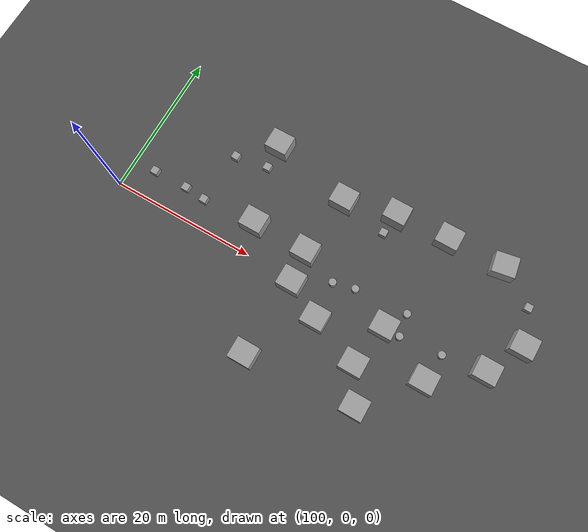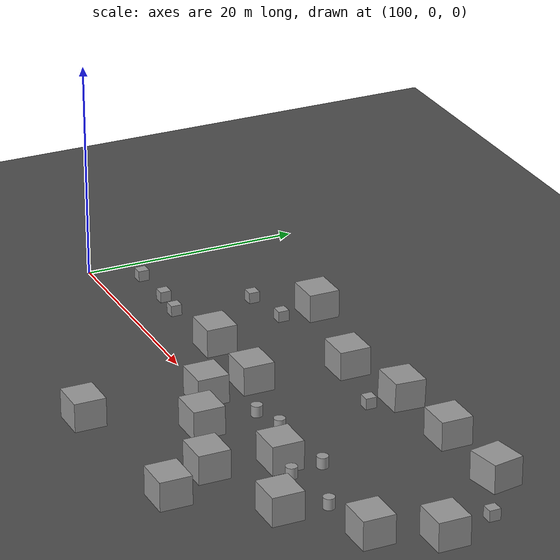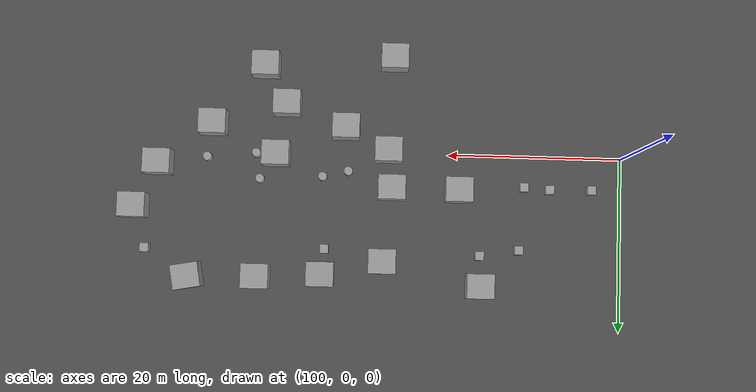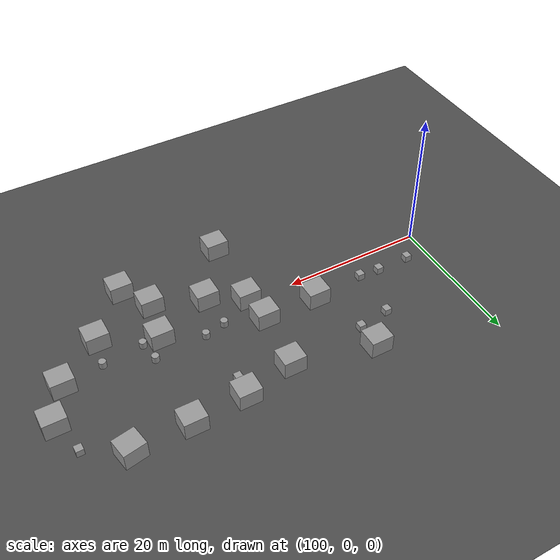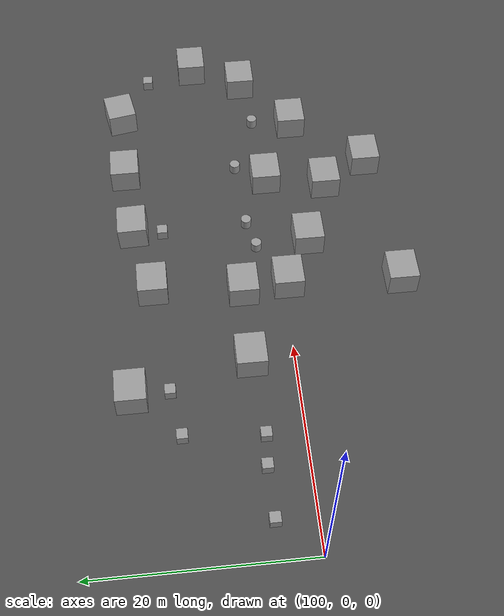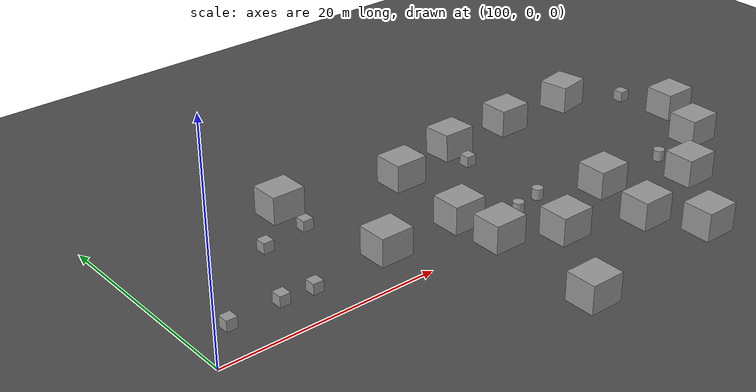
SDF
<sdf version="1.7">
 <world name="default">
  <scene>
   <sky><clouds><speed>6</speed></clouds></sky>
   <ambient>0.95 0.95 0.95 1</ambient>
   <background>0.3 0.3 0.3 1</background>
   <shadows>1</shadows>
  </scene>
  <spherical_coordinates>
   <surface_model>EARTH_WGS84</surface_model>
   <latitude_deg>31.1434</latitude_deg>
   <longitude_deg>121.424</longitude_deg>
   <elevation>2</elevation>
   <heading_deg>0</heading_deg>
  </spherical_coordinates>
  <light name="sun" type="directional">
   <pose>0 0 10 0 -0 0</pose>
   <diffuse>0.8 0.8 0.8 1</diffuse>
   <specular>0.2 0.2 0.2 1</specular>
   <attenuation>
    <range>1000</range>
    <constant>0.9</constant>
    <linear>0.01</linear>
    <quadratic>0.001</quadratic>
   </attenuation>
   <direction>-0.5 0.1 -0.9</direction>
   <spot><inner_angle>0</inner_angle><outer_angle>0</outer_angle><falloff>0</falloff></spot>
  </light>
  <model name="asphalt_plane">
   <static>1</static>
   <link name="link">
    <collision name="collision"><geometry><box><size>400 400 0.1</size></box></geometry></collision>
    <visual name="visual">
     <cast_shadows>0</cast_shadows>
     <geometry><box><size>400 400 0.1</size></box></geometry>
     <material>
      <script>
       <uri>model://asphalt_plane/materials/scripts</uri>
       <uri>model://asphalt_plane/materials/textures</uri>
       <name>vrc/asphalt</name>
      </script>
     </material>
    </visual>
   </link>
  </model>
  <physics name="default_physics" default="0" type="ode">
   <ode>
    <solver>
     <type>quick</type>
     <iters>10</iters>
     <sor>1.3</sor>
     <use_dynamic_moi_rescaling>0</use_dynamic_moi_rescaling>
    </solver>
    <constraints>
     <cfm>0</cfm>
     <erp>0.2</erp>
     <contact_max_correcting_vel>100</contact_max_correcting_vel>
     <contact_surface_layer>0.001</contact_surface_layer>
    </constraints>
   </ode>
   <max_step_size>0.004</max_step_size>
   <real_time_factor>1</real_time_factor>
   <real_time_update_rate>250</real_time_update_rate>
  </physics>
  <gravity>0 0 -9.8066</gravity>
  <magnetic_field>6e-06 2.3e-05 -4.2e-05</magnetic_field>
  <atmosphere type="adiabatic"/>
  <model name="unit_box">
   <pose>156.067 6.77384 1.44092 3.4e-05 -1e-06 -0.001028</pose>
   <link name="link">
    <inertial>
     <mass>1</mass>
     <inertia>
      <ixx>0.166667</ixx>
      <ixy>0</ixy>
      <ixz>0</ixz>
      <iyy>0.166667</iyy>
      <iyz>0</iyz>
      <izz>0.166667</izz>
     </inertia>
    </inertial>
    <collision name="collision"><geometry><box><size>3.13624 2.80509 2.58182</size></box></geometry></collision>
    <visual name="visual">
     <geometry><box><size>3.13624 2.80509 2.58182</size></box></geometry>
     <material>
      <script><name>Gazebo/Grey</name><uri>file://media/materials/scripts/gazebo.material</uri></script>
     </material>
    </visual>
   </link>
  </model>
  <model name="unit_box_0">
   <pose>154.701 11.5995 0.65 1.6e-05 4e-06 0.000752</pose>
   <link name="link">
    <inertial>
     <mass>1</mass>
     <inertia>
      <ixx>0.166667</ixx>
      <ixy>0</ixy>
      <ixz>0</ixz>
      <iyy>0.166667</iyy>
      <iyz>0</iyz>
      <izz>0.166667</izz>
     </inertia>
    </inertial>
    <collision name="collision"><geometry><box><size>1 1 1</size></box></geometry></collision>
    <visual name="visual">
     <geometry><box><size>1 1 1</size></box></geometry>
     <material>
      <script><name>Gazebo/Grey</name><uri>file://media/materials/scripts/gazebo.material</uri></script>
     </material>
    </visual>
   </link>
  </model>
  <model name="unit_box_clone">
   <pose>153.421 1.70214 1.44092 -2e-06 -2.3e-05 -0.000956</pose>
   <link name="link">
    <inertial>
     <mass>1</mass>
     <inertia>
      <ixx>0.166667</ixx>
      <ixy>0</ixy>
      <ixz>0</ixz>
      <iyy>0.166667</iyy>
      <iyz>0</iyz>
      <izz>0.166667</izz>
     </inertia>
    </inertial>
    <collision name="collision"><geometry><box><size>3.13624 2.80509 2.58183</size></box></geometry></collision>
    <visual name="visual">
     <geometry><box><size>3.13624 2.80509 2.58183</size></box></geometry>
     <material>
      <script><name>Gazebo/Grey</name><uri>file://media/materials/scripts/gazebo.material</uri></script>
     </material>
    </visual>
   </link>
  </model>
  <model name="unit_box_clone_0">
   <pose>147.226 -3.03929 1.44092 -3.5e-05 -1.1e-05 -0.001032</pose>
   <link name="link">
    <inertial>
     <mass>1</mass>
     <inertia>
      <ixx>0.166667</ixx>
      <ixy>0</ixy>
      <ixz>0</ixz>
      <iyy>0.166667</iyy>
      <iyz>0</iyz>
      <izz>0.166667</izz>
     </inertia>
    </inertial>
    <collision name="collision"><geometry><box><size>3.13624 2.80509 2.58183</size></box></geometry></collision>
    <visual name="visual">
     <geometry><box><size>3.13624 2.80509 2.58183</size></box></geometry>
     <material>
      <script><name>Gazebo/Grey</name><uri>file://media/materials/scripts/gazebo.material</uri></script>
     </material>
    </visual>
   </link>
  </model>
  <model name="unit_box_clone_1">
   <pose>139.869 0.410114 1.44089 -1.5e-05 1.6e-05 -0.000624</pose>
   <link name="link">
    <inertial>
     <mass>1</mass>
     <inertia>
      <ixx>0.166667</ixx>
      <ixy>0</ixy>
      <ixz>0</ixz>
      <iyy>0.166667</iyy>
      <iyz>0</iyz>
      <izz>0.166667</izz>
     </inertia>
    </inertial>
    <collision name="collision"><geometry><box><size>3.13624 2.80509 2.58183</size></box></geometry></collision>
    <visual name="visual">
     <geometry><box><size>3.13624 2.80509 2.58183</size></box></geometry>
     <material>
      <script><name>Gazebo/Grey</name><uri>file://media/materials/scripts/gazebo.material</uri></script>
     </material>
    </visual>
   </link>
  </model>
  <model name="unit_box_clone_2">
   <pose>138.744 -5.48095 1.44092 1.4e-05 -1e-06 -0.001673</pose>
   <link name="link">
    <inertial>
     <mass>1</mass>
     <inertia>
      <ixx>0.166667</ixx>
      <ixy>0</ixy>
      <ixz>0</ixz>
      <iyy>0.166667</iyy>
      <iyz>0</iyz>
      <izz>0.166667</izz>
     </inertia>
    </inertial>
    <collision name="collision"><geometry><box><size>3.13624 2.80509 2.58183</size></box></geometry></collision>
    <visual name="visual">
     <geometry><box><size>3.13624 2.80509 2.58183</size></box></geometry>
     <material>
      <script><name>Gazebo/Grey</name><uri>file://media/materials/scripts/gazebo.material</uri></script>
     </material>
    </visual>
   </link>
  </model>
  <model name="unit_box_clone_3">
   <pose>141.338 -9.92378 1.44091 1e-06 -6e-06 -0.000439</pose>
   <link name="link">
    <inertial>
     <mass>1</mass>
     <inertia>
      <ixx>0.166667</ixx>
      <ixy>0</ixy>
      <ixz>0</ixz>
      <iyy>0.166667</iyy>
      <iyz>0</iyz>
      <izz>0.166667</izz>
     </inertia>
    </inertial>
    <collision name="collision"><geometry><box><size>3.13624 2.80509 2.58183</size></box></geometry></collision>
    <visual name="visual">
     <geometry><box><size>3.13624 2.80509 2.58183</size></box></geometry>
     <material>
      <script><name>Gazebo/Grey</name><uri>file://media/materials/scripts/gazebo.material</uri></script>
     </material>
    </visual>
   </link>
  </model>
  <model name="unit_box_clone_4">
   <pose>131.869 -2.89113 1.44091 -2.1e-05 -1.1e-05 -0.000996</pose>
   <link name="link">
    <inertial>
     <mass>1</mass>
     <inertia>
      <ixx>0.166667</ixx>
      <ixy>0</ixy>
      <ixz>0</ixz>
      <iyy>0.166667</iyy>
      <iyz>0</iyz>
      <izz>0.166667</izz>
     </inertia>
    </inertial>
    <collision name="collision"><geometry><box><size>3.13624 2.80509 2.58183</size></box></geometry></collision>
    <visual name="visual">
     <geometry><box><size>3.13624 2.80509 2.58183</size></box></geometry>
     <material>
      <script><name>Gazebo/Grey</name><uri>file://media/materials/scripts/gazebo.material</uri></script>
     </material>
    </visual>
   </link>
  </model>
  <model name="unit_box_clone_5">
   <pose>126.431 -11.097 1.44091 0 -5e-06 -0.000737</pose>
   <link name="link">
    <inertial>
     <mass>1</mass>
     <inertia>
      <ixx>0.166667</ixx>
      <ixy>0</ixy>
      <ixz>0</ixz>
      <iyy>0.166667</iyy>
      <iyz>0</iyz>
      <izz>0.166667</izz>
     </inertia>
    </inertial>
    <collision name="collision"><geometry><box><size>3.13624 2.80509 2.58183</size></box></geometry></collision>
    <visual name="visual">
     <geometry><box><size>3.13624 2.80509 2.58183</size></box></geometry>
     <material>
      <script><name>Gazebo/Grey</name><uri>file://media/materials/scripts/gazebo.material</uri></script>
     </material>
    </visual>
   </link>
  </model>
  <model name="unit_box_clone_6">
   <pose>141.804 14.574 1.34092 2.8e-05 -3.8e-05 0.000315</pose>
   <link name="link">
    <inertial>
     <mass>1</mass>
     <inertia>
      <ixx>0.166667</ixx>
      <ixy>0</ixy>
      <ixz>0</ixz>
      <iyy>0.166667</iyy>
      <iyz>0</iyz>
      <izz>0.166667</izz>
     </inertia>
    </inertial>
    <collision name="collision"><geometry><box><size>3.13624 2.80509 2.58183</size></box></geometry></collision>
    <visual name="visual">
     <geometry><box><size>3.13624 2.80509 2.58183</size></box></geometry>
     <material>
      <script><name>Gazebo/Grey</name><uri>file://media/materials/scripts/gazebo.material</uri></script>
     </material>
    </visual>
   </link>
  </model>
  <model name="unit_box_clone_7">
   <pose>134.416 14.1158 1.3956 -0.039745 -1.6e-05 0.000165</pose>
   <link name="link">
    <inertial>
     <mass>1</mass>
     <inertia>
      <ixx>0.166667</ixx>
      <ixy>0</ixy>
      <ixz>0</ixz>
      <iyy>0.166667</iyy>
      <iyz>0</iyz>
      <izz>0.166667</izz>
     </inertia>
    </inertial>
    <collision name="collision"><geometry><box><size>3.13624 2.80509 2.58183</size></box></geometry></collision>
    <visual name="visual">
     <geometry><box><size>3.13624 2.80509 2.58183</size></box></geometry>
     <material>
      <script><name>Gazebo/Grey</name><uri>file://media/materials/scripts/gazebo.material</uri></script>
     </material>
    </visual>
   </link>
  </model>
  <model name="unit_box_clone_8">
   <pose>126.919 -0.313087 1.44091 -8e-06 -2e-06 -0.000817</pose>
   <link name="link">
    <inertial>
     <mass>1</mass>
     <inertia>
      <ixx>0.166667</ixx>
      <ixy>0</ixy>
      <ixz>0</ixz>
      <iyy>0.166667</iyy>
      <iyz>0</iyz>
      <izz>0.166667</izz>
     </inertia>
    </inertial>
    <collision name="collision"><geometry><box><size>3.13624 2.80509 2.58183</size></box></geometry></collision>
    <visual name="visual">
     <geometry><box><size>3.13624 2.80509 2.58183</size></box></geometry>
     <material>
      <script><name>Gazebo/Grey</name><uri>file://media/materials/scripts/gazebo.material</uri></script>
     </material>
    </visual>
   </link>
  </model>
  <model name="unit_cylinder">
   <pose>134.459 2.88746 0.650024 -3.6e-05 -3.2e-05 -0.002007</pose>
   <link name="link">
    <inertial>
     <mass>1</mass>
     <inertia><ixx>0.145833</ixx><ixy>0</ixy><ixz>0</ixz><iyy>0.145833</iyy><iyz>0</iyz><izz>0.125</izz></inertia>
    </inertial>
    <collision name="collision">
     <geometry><cylinder><radius>0.5</radius><length>1</length></cylinder></geometry>
    </collision>
    <visual name="visual">
     <geometry><cylinder><radius>0.5</radius><length>1</length></cylinder></geometry>
     <material>
      <script><name>Gazebo/Grey</name><uri>file://media/materials/scripts/gazebo.material</uri></script>
     </material>
    </visual>
   </link>
  </model>
  <model name="unit_cylinder_clone">
   <pose>131.509 2.19715 0.650029 -2.1e-05 5.6e-05 -0.003595</pose>
   <link name="link">
    <inertial>
     <mass>1</mass>
     <inertia><ixx>0.145833</ixx><ixy>0</ixy><ixz>0</ixz><iyy>0.145833</iyy><iyz>0</iyz><izz>0.125</izz></inertia>
    </inertial>
    <collision name="collision">
     <geometry><cylinder><radius>0.5</radius><length>1</length></cylinder></geometry>
    </collision>
    <visual name="visual">
     <geometry><cylinder><radius>0.5</radius><length>1</length></cylinder></geometry>
     <material>
      <script><name>Gazebo/Grey</name><uri>file://media/materials/scripts/gazebo.material</uri></script>
     </material>
    </visual>
   </link>
  </model>
  <model name="unit_cylinder_clone_0">
   <pose>141.697 3.29848 0.650038 -2.7e-05 7.2e-05 -0.001663</pose>
   <link name="link">
    <inertial>
     <mass>1</mass>
     <inertia><ixx>0.145833</ixx><ixy>0</ixy><ixz>0</ixz><iyy>0.145833</iyy><iyz>0</iyz><izz>0.125</izz></inertia>
    </inertial>
    <collision name="collision">
     <geometry><cylinder><radius>0.5</radius><length>1</length></cylinder></geometry>
    </collision>
    <visual name="visual">
     <geometry><cylinder><radius>0.5</radius><length>1</length></cylinder></geometry>
     <material>
      <script><name>Gazebo/Grey</name><uri>file://media/materials/scripts/gazebo.material</uri></script>
     </material>
    </visual>
   </link>
  </model>
  <model name="unit_cylinder_clone_1">
   <pose>147.837 0.882561 0.64997 1e-05 -8.1e-05 -0.003436</pose>
   <link name="link">
    <inertial>
     <mass>1</mass>
     <inertia><ixx>0.145833</ixx><ixy>0</ixy><ixz>0</ixz><iyy>0.145833</iyy><iyz>0</iyz><izz>0.125</izz></inertia>
    </inertial>
    <collision name="collision">
     <geometry><cylinder><radius>0.5</radius><length>1</length></cylinder></geometry>
    </collision>
    <visual name="visual">
     <geometry><cylinder><radius>0.5</radius><length>1</length></cylinder></geometry>
     <material>
      <script><name>Gazebo/Grey</name><uri>file://media/materials/scripts/gazebo.material</uri></script>
     </material>
    </visual>
   </link>
  </model>
  <model name="unit_cylinder_clone_2">
   <pose>142.172 0.32497 0.649903 2.6e-05 3e-05 -5.1e-05</pose>
   <link name="link">
    <inertial>
     <mass>1</mass>
     <inertia><ixx>0.145833</ixx><ixy>0</ixy><ixz>0</ixz><iyy>0.145833</iyy><iyz>0</iyz><izz>0.125</izz></inertia>
    </inertial>
    <collision name="collision">
     <geometry><cylinder><radius>0.5</radius><length>1</length></cylinder></geometry>
    </collision>
    <visual name="visual">
     <geometry><cylinder><radius>0.5</radius><length>1</length></cylinder></geometry>
     <material>
      <script><name>Gazebo/Grey</name><uri>file://media/materials/scripts/gazebo.material</uri></script>
     </material>
    </visual>
   </link>
  </model>
  <model name="unit_box_clone_7_clone">
   <pose>127.393 12.5484 1.44092 -3e-06 -1.2e-05 -5.1e-05</pose>
   <link name="link">
    <inertial>
     <mass>1</mass>
     <inertia>
      <ixx>0.166667</ixx>
      <ixy>0</ixy>
      <ixz>0</ixz>
      <iyy>0.166667</iyy>
      <iyz>0</iyz>
      <izz>0.166667</izz>
     </inertia>
    </inertial>
    <collision name="collision"><geometry><box><size>3.13624 2.80509 2.58183</size></box></geometry></collision>
    <visual name="visual">
     <geometry><box><size>3.13624 2.80509 2.58183</size></box></geometry>
     <material>
      <script><name>Gazebo/Grey</name><uri>file://media/materials/scripts/gazebo.material</uri></script>
     </material>
    </visual>
   </link>
  </model>
  <model name="unit_box_clone_7_clone_0">
   <pose>126.462 4.03026 1.44092 -1.4e-05 2.2e-05 -0.000392</pose>
   <link name="link">
    <inertial>
     <mass>1</mass>
     <inertia>
      <ixx>0.166667</ixx>
      <ixy>0</ixy>
      <ixz>0</ixz>
      <iyy>0.166667</iyy>
      <iyz>0</iyz>
      <izz>0.166667</izz>
     </inertia>
    </inertial>
    <collision name="collision"><geometry><box><size>3.13624 2.80509 2.58183</size></box></geometry></collision>
    <visual name="visual">
     <geometry><box><size>3.13624 2.80509 2.58183</size></box></geometry>
     <material>
      <script><name>Gazebo/Grey</name><uri>file://media/materials/scripts/gazebo.material</uri></script>
     </material>
    </visual>
   </link>
  </model>
  <model name="unit_box_clone_7_clone_1">
   <pose>118.757 4.10571 1.4409 1.7e-05 -1.6e-05 -0.000384</pose>
   <link name="link">
    <inertial>
     <mass>1</mass>
     <inertia>
      <ixx>0.166667</ixx>
      <ixy>0</ixy>
      <ixz>0</ixz>
      <iyy>0.166667</iyy>
      <iyz>0</iyz>
      <izz>0.166667</izz>
     </inertia>
    </inertial>
    <collision name="collision"><geometry><box><size>3.13624 2.80509 2.58183</size></box></geometry></collision>
    <visual name="visual">
     <geometry><box><size>3.13624 2.80509 2.58183</size></box></geometry>
     <material>
      <script><name>Gazebo/Grey</name><uri>file://media/materials/scripts/gazebo.material</uri></script>
     </material>
    </visual>
   </link>
  </model>
  <model name="unit_box_clone_7_clone_2">
   <pose>116.162 15.0729 1.34092 -8e-06 -2.4e-05 0.001908</pose>
   <link name="link">
    <inertial>
     <mass>1</mass>
     <inertia>
      <ixx>0.166667</ixx>
      <ixy>0</ixy>
      <ixz>0</ixz>
      <iyy>0.166667</iyy>
      <iyz>0</iyz>
      <izz>0.166667</izz>
     </inertia>
    </inertial>
    <collision name="collision"><geometry><box><size>3.13624 2.80509 2.58183</size></box></geometry></collision>
    <visual name="visual">
     <geometry><box><size>3.13624 2.80509 2.58183</size></box></geometry>
     <material>
      <script><name>Gazebo/Grey</name><uri>file://media/materials/scripts/gazebo.material</uri></script>
     </material>
    </visual>
   </link>
  </model>
  <model name="unit_box_clone_7_clone_3">
   <pose>149.605 14.7289 1.34092 1e-06 -1.6e-05 0.177752</pose>
   <link name="link">
    <inertial>
     <mass>1</mass>
     <inertia>
      <ixx>0.166667</ixx>
      <ixy>0</ixy>
      <ixz>0</ixz>
      <iyy>0.166667</iyy>
      <iyz>0</iyz>
      <izz>0.166667</izz>
     </inertia>
    </inertial>
    <collision name="collision"><geometry><box><size>3.13624 2.80509 2.58183</size></box></geometry></collision>
    <visual name="visual">
     <geometry><box><size>3.13624 2.80509 2.58183</size></box></geometry>
     <material>
      <script><name>Gazebo/Grey</name><uri>file://media/materials/scripts/gazebo.material</uri></script>
     </material>
    </visual>
   </link>
  </model>
  <model name="unit_box_1">
   <pose>111.723 10.8484 0.65 -5e-06 -1.9e-05 0.000145</pose>
   <link name="link">
    <inertial>
     <mass>1</mass>
     <inertia>
      <ixx>0.166667</ixx>
      <ixy>0</ixy>
      <ixz>0</ixz>
      <iyy>0.166667</iyy>
      <iyz>0</iyz>
      <izz>0.166667</izz>
     </inertia>
    </inertial>
    <collision name="collision"><geometry><box><size>1 1 1</size></box></geometry></collision>
    <visual name="visual">
     <geometry><box><size>1 1 1</size></box></geometry>
     <material>
      <script><name>Gazebo/Grey</name><uri>file://media/materials/scripts/gazebo.material</uri></script>
     </material>
    </visual>
   </link>
  </model>
  <model name="unit_box_2">
   <pose>116.214 11.6009 0.65 1e-06 3e-06 0.000126</pose>
   <link name="link">
    <inertial>
     <mass>1</mass>
     <inertia>
      <ixx>0.166667</ixx>
      <ixy>0</ixy>
      <ixz>0</ixz>
      <iyy>0.166667</iyy>
      <iyz>0</iyz>
      <izz>0.166667</izz>
     </inertia>
    </inertial>
    <collision name="collision"><geometry><box><size>1 1 1</size></box></geometry></collision>
    <visual name="visual">
     <geometry><box><size>1 1 1</size></box></geometry>
     <material>
      <script><name>Gazebo/Grey</name><uri>file://media/materials/scripts/gazebo.material</uri></script>
     </material>
    </visual>
   </link>
  </model>
  <model name="unit_box_3">
   <pose>134.051 11.2408 0.65 -3e-06 1e-06 -0.000349</pose>
   <link name="link">
    <inertial>
     <mass>1</mass>
     <inertia>
      <ixx>0.166667</ixx>
      <ixy>0</ixy>
      <ixz>0</ixz>
      <iyy>0.166667</iyy>
      <iyz>0</iyz>
      <izz>0.166667</izz>
     </inertia>
    </inertial>
    <collision name="collision"><geometry><box><size>1 1 1</size></box></geometry></collision>
    <visual name="visual">
     <geometry><box><size>1 1 1</size></box></geometry>
     <material>
      <script><name>Gazebo/Grey</name><uri>file://media/materials/scripts/gazebo.material</uri></script>
     </material>
    </visual>
   </link>
  </model>
  <model name="unit_box_4">
   <pose>108.237 3.8093 0.659948 0.014854 0.005204 0.002034</pose>
   <link name="link">
    <inertial>
     <mass>1</mass>
     <inertia>
      <ixx>0.166667</ixx>
      <ixy>0</ixy>
      <ixz>0</ixz>
      <iyy>0.166667</iyy>
      <iyz>0</iyz>
      <izz>0.166667</izz>
     </inertia>
    </inertial>
    <collision name="collision"><geometry><box><size>1 1 1</size></box></geometry></collision>
    <visual name="visual">
     <geometry><box><size>1 1 1</size></box></geometry>
     <material>
      <script><name>Gazebo/Grey</name><uri>file://media/materials/scripts/gazebo.material</uri></script>
     </material>
    </visual>
   </link>
  </model>
  <model name="unit_box_5">
   <pose>103.412 3.73233 0.650001 1e-05 -8e-06 0.000128</pose>
   <link name="link">
    <inertial>
     <mass>1</mass>
     <inertia>
      <ixx>0.166667</ixx>
      <ixy>0</ixy>
      <ixz>0</ixz>
      <iyy>0.166667</iyy>
      <iyz>0</iyz>
      <izz>0.166667</izz>
     </inertia>
    </inertial>
    <collision name="collision"><geometry><box><size>1 1 1</size></box></geometry></collision>
    <visual name="visual">
     <geometry><box><size>1 1 1</size></box></geometry>
     <material>
      <script><name>Gazebo/Grey</name><uri>file://media/materials/scripts/gazebo.material</uri></script>
     </material>
    </visual>
   </link>
  </model>
  <model name="unit_box_6">
   <pose>111.19 3.56502 0.649999 -4e-06 3.6e-05 9.8e-05</pose>
   <link name="link">
    <inertial>
     <mass>1</mass>
     <inertia>
      <ixx>0.166667</ixx>
      <ixy>0</ixy>
      <ixz>0</ixz>
      <iyy>0.166667</iyy>
      <iyz>0</iyz>
      <izz>0.166667</izz>
     </inertia>
    </inertial>
    <collision name="collision"><geometry><box><size>1 1 1</size></box></geometry></collision>
    <visual name="visual">
     <geometry><box><size>1 1 1</size></box></geometry>
     <material>
      <script><name>Gazebo/Grey</name><uri>file://media/materials/scripts/gazebo.material</uri></script>
     </material>
    </visual>
   </link>
  </model>
 </world>
</sdf>
